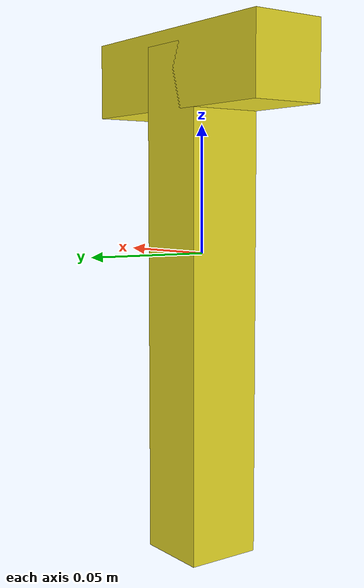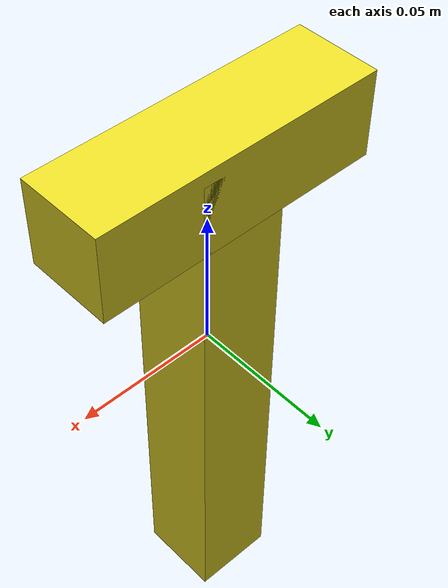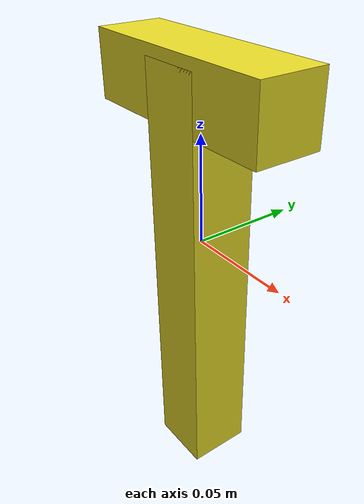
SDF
<?xml version='1.0'?>
<sdf version='1.6'>
<model name='t_primitiv'>
    <link name='link_0'>
      <inertial>
        <mass>0.2</mass>
      </inertial>
      <pose frame=''>0 0 0.07 0 0 0</pose>
      <gravity>1</gravity>
      <self_collide>0</self_collide>
      <kinematic>0</kinematic>
      <enable_wind>0</enable_wind>
      <visual name='visual'>
        <geometry>
            <box>
              <size> 0.1 0.03 0.03</size>
            </box>
        </geometry>
        <material>
          <lighting>1</lighting>
          <script>
            <uri>file://media/materials/scripts/gazebo.material</uri>
            <name>Gazebo/Yellow</name>
          </script>
        </material>
        <cast_shadows>1</cast_shadows>
      </visual>
      <collision name='collision'>
        <laser_retro>0</laser_retro>
        <max_contacts>10</max_contacts>
        <pose frame=''>0 0 0.07 0 -0 0</pose>
        <geometry>
            <box>
              <size> 0.1 0.03 0.03</size>
            </box>
        </geometry>
        						<contact>
							<ode>
								<max_vel>0</max_vel>
								<min_depth>0.001</min_depth>
							</ode>
						</contact>
      </collision>
    </link>

    <link name='link_1'>
      <inertial>
        <mass>0.2</mass>
        <pose frame=''>0 0 0 0 0 0</pose>
      </inertial>
      <pose frame=''>0 0 -0.020000 0 -0 0</pose>
      <gravity>1</gravity>
      <self_collide>0</self_collide>
      <kinematic>0</kinematic>
      <enable_wind>0</enable_wind>
      <visual name='visual'>
        <pose frame=''>0 0 0 0 -0 0</pose>
        <geometry>
            <box>
              <size> 0.03 0.03 0.2</size>
            </box>
        </geometry>
        <material>
          <lighting>1</lighting>
          <script>
            <uri>file://media/materials/scripts/gazebo.material</uri>
            <name>Gazebo/Yellow</name>
          </script>
        </material>
        <cast_shadows>1</cast_shadows>
      </visual>
      <collision name='collision'>
        <laser_retro>0</laser_retro>
        <max_contacts>10</max_contacts>
        <pose frame=''>0 0 -0.02 0 -0 0</pose>
        <geometry>
            <box>
              <size> 0.03 0.03 0.2</size>
            </box>
        </geometry>
        						<contact>
							<ode>
								<max_vel>0</max_vel>
								<min_depth>0.001</min_depth>
							</ode>
						</contact>
      </collision>
    </link>

     <joint name='link_0_link_1JOINT_0' type='fixed'>
      <parent>link_0</parent>
      <child>link_1</child>
      <pose frame=''>0 0 0 0 0 0</pose>
    </joint>

    <static>0</static>
    <allow_auto_disable>1</allow_auto_disable>
  </model>
</sdf>
